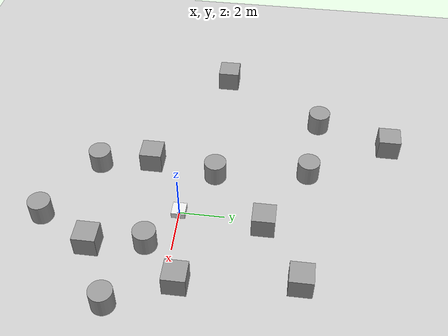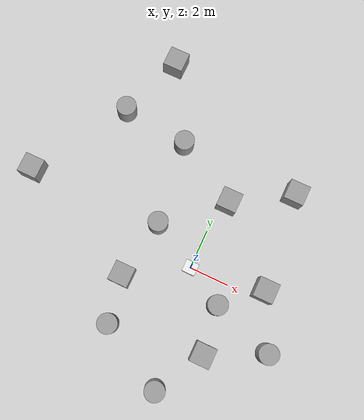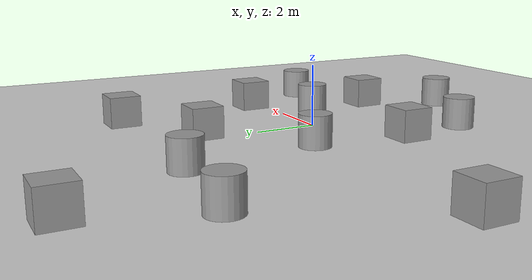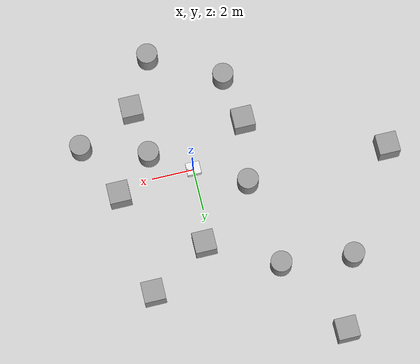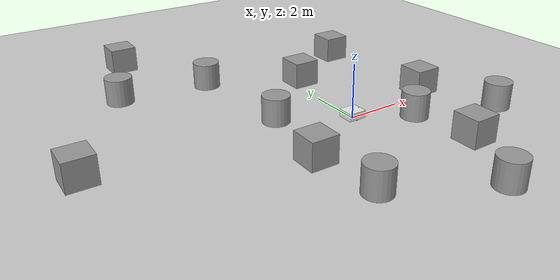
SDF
<sdf version="1.7">
 <world name="default">
  <light name="sun" type="directional">
   <pose>0 0 10 0 -0 0</pose>
   <diffuse>0.8 0.8 0.8 1</diffuse>
   <specular>0.2 0.2 0.2 1</specular>
   <attenuation>
    <range>1000</range>
    <constant>0.9</constant>
    <linear>0.01</linear>
    <quadratic>0.001</quadratic>
   </attenuation>
   <direction>-0.5 0.1 -0.9</direction>
   <spot><inner_angle>0</inner_angle><outer_angle>0</outer_angle><falloff>0</falloff></spot>
  </light>
  <model name="ground_plane">
   <static>1</static>
   <link name="link">
    <collision name="collision">
     <geometry><plane><normal>0 0 1</normal><size>100 100</size></plane></geometry>
     <surface><friction><ode><mu>100</mu><mu2>50</mu2></ode></friction></surface>
    </collision>
    <visual name="visual">
     <cast_shadows>0</cast_shadows>
     <geometry><plane><normal>0 0 1</normal><size>100 100</size></plane></geometry>
     <material>
      <script><uri>file://media/materials/scripts/gazebo.material</uri><name>Gazebo/Grey</name></script>
     </material>
    </visual>
   </link>
  </model>
  <gravity>0 0 -9.8</gravity>
  <magnetic_field>6e-06 2.3e-05 -4.2e-05</magnetic_field>
  <atmosphere type="adiabatic"/>
  <physics type="ode">
   <max_step_size>0.001</max_step_size>
   <real_time_factor>1</real_time_factor>
   <real_time_update_rate>1000</real_time_update_rate>
  </physics>
  <scene><ambient>0.4 0.4 0.4 1</ambient><background>0.7 0.7 0.7 1</background><shadows>1</shadows></scene>
  <audio><device>default</device></audio>
  <spherical_coordinates>
   <surface_model>EARTH_WGS84</surface_model>
   <latitude_deg>0</latitude_deg>
   <longitude_deg>0</longitude_deg>
   <elevation>0</elevation>
   <heading_deg>0</heading_deg>
  </spherical_coordinates>
  <model name="bunker_mini">
   <link name="base_link">
    <inertial>
     <pose>0.007917 0 0.14125 0 -0 0</pose>
     <mass>2.4</mass>
     <inertia>
      <ixx>0.0838745</ixx>
      <ixy>0</ixy>
      <ixz>-0.00263625</ixz>
      <iyy>0.110417</iyy>
      <iyz>0</iyz>
      <izz>0.150863</izz>
     </inertia>
    </inertial>
    <collision name="base_link_fixed_joint_lump__chassis_collision">
     <pose>0 0 0.1405 0 -0 0</pose>
     <geometry><box><size>0.66 0.61 0.281</size></box></geometry>
    </collision>
    <collision name="base_link_fixed_joint_lump__laser_frame_collision_1">
     <pose>0 0 0.3 0 -0 0</pose>
     <geometry><cylinder><length>0.041</length><radius>0.038</radius></cylinder></geometry>
    </collision>
    <collision name="base_link_fixed_joint_lump__front_caster_wheel_collision_2">
     <pose>0.25 0 0 0 -0 0</pose>
     <geometry><sphere><radius>0.05</radius></sphere></geometry>
     <surface><friction><ode><mu>0.001</mu><mu2>0.001</mu2></ode></friction></surface>
    </collision>
    <collision name="base_link_fixed_joint_lump__front_diamond_collision_3">
     <pose>0.27 0 0.28 0 -0 0.785398</pose>
     <geometry><box><size>0.03 0.03 0.02</size></box></geometry>
    </collision>
    <collision name="base_link_fixed_joint_lump__rear_caster_wheel_collision_4">
     <pose>-0.25 0 0 0 -0 0</pose>
     <geometry><sphere><radius>0.05</radius></sphere></geometry>
     <surface><friction><ode><mu>0.001</mu><mu2>0.001</mu2></ode></friction></surface>
    </collision>
    <visual name="base_link_fixed_joint_lump__chassis_visual">
     <pose>0 0 0.1405 0 -0 0</pose>
     <geometry><box><size>0.66 0.61 0.281</size></box></geometry>
     <material>
      <script><name>Gazebo/White</name><uri>file://media/materials/scripts/gazebo.material</uri></script>
     </material>
    </visual>
    <visual name="base_link_fixed_joint_lump__laser_frame_visual_1">
     <pose>0 0 0.3 0 -0 0</pose>
     <geometry><cylinder><length>0.041</length><radius>0.038</radius></cylinder></geometry>
     <material>
      <script><name>Gazebo/Red</name><uri>file://media/materials/scripts/gazebo.material</uri></script>
     </material>
    </visual>
    <visual name="base_link_fixed_joint_lump__front_caster_wheel_visual_2">
     <pose>0.25 0 0 0 -0 0</pose>
     <geometry><sphere><radius>0.05</radius></sphere></geometry>
     <material>
      <script><name>Gazebo/Black</name><uri>file://media/materials/scripts/gazebo.material</uri></script>
     </material>
    </visual>
    <visual name="base_link_fixed_joint_lump__front_diamond_visual_3">
     <pose>0.27 0 0.28 0 -0 0.785398</pose>
     <geometry><box><size>0.03 0.03 0.02</size></box></geometry>
     <material>
      <script><name>Gazebo/Blue</name><uri>file://media/materials/scripts/gazebo.material</uri></script>
     </material>
    </visual>
    <visual name="base_link_fixed_joint_lump__rear_caster_wheel_visual_4">
     <pose>-0.25 0 0 0 -0 0</pose>
     <geometry><sphere><radius>0.05</radius></sphere></geometry>
     <material>
      <script><name>Gazebo/Black</name><uri>file://media/materials/scripts/gazebo.material</uri></script>
     </material>
    </visual>
    <sensor name="rplidar_a2m12" type="ray">
     <visualize>1</visualize>
     <update_rate>10</update_rate>
     <ray>
      <scan>
       <horizontal>
        <samples>360</samples>
        <resolution>1</resolution>
        <min_angle>-3.14</min_angle>
        <max_angle>3.14</max_angle>
       </horizontal>
       <vertical><samples>1</samples><min_angle>0</min_angle><max_angle>0</max_angle></vertical>
      </scan>
      <range><min>0.3</min><max>12</max><resolution>1</resolution></range>
     </ray>
     <plugin name="laser_controller" filename="libgazebo_ros_ray_sensor.so">
      <ros><argument>~/out:=scan</argument></ros>
      <output_type>sensor_msgs/LaserScan</output_type>
      <frame_name>laser_frame</frame_name>
     </plugin>
     <pose>0 0 0.3 0 -0 0</pose>
    </sensor>
   </link>
   <joint name="left_wheel_joint" type="revolute">
    <pose relative_to="base_link">0 0.25 0 -1.5708 0 0</pose>
    <parent>base_link</parent>
    <child>left_wheel</child>
    <axis>
     <xyz>0 0 1</xyz>
     <limit><lower>-1e+16</lower><upper>1e+16</upper></limit>
     <dynamics><spring_reference>0</spring_reference><spring_stiffness>0</spring_stiffness></dynamics>
    </axis>
   </joint>
   <link name="left_wheel">
    <pose relative_to="left_wheel_joint">0 0 0 0 -0 0</pose>
    <inertial>
     <mass>0.1</mass>
     <inertia>
      <ixx>7.58333e-05</ixx>
      <ixy>0</ixy>
      <ixz>0</ixz>
      <iyy>7.58333e-05</iyy>
      <iyz>0</iyz>
      <izz>0.000125</izz>
     </inertia>
    </inertial>
    <collision name="left_wheel_collision">
     <geometry><cylinder><length>0.04</length><radius>0.05</radius></cylinder></geometry>
    </collision>
    <visual name="left_wheel_visual">
     <geometry><cylinder><length>0.04</length><radius>0.05</radius></cylinder></geometry>
     <material>
      <script><name>Gazebo/Blue</name><uri>file://media/materials/scripts/gazebo.material</uri></script>
     </material>
    </visual>
   </link>
   <joint name="right_wheel_joint" type="revolute">
    <pose relative_to="base_link">0 -0.25 0 1.5708 -0 0</pose>
    <parent>base_link</parent>
    <child>right_wheel</child>
    <axis>
     <xyz>0 0 -1</xyz>
     <limit><lower>-1e+16</lower><upper>1e+16</upper></limit>
     <dynamics><spring_reference>0</spring_reference><spring_stiffness>0</spring_stiffness></dynamics>
    </axis>
   </joint>
   <link name="right_wheel">
    <pose relative_to="right_wheel_joint">0 0 0 0 -0 0</pose>
    <inertial>
     <mass>0.1</mass>
     <inertia>
      <ixx>7.58333e-05</ixx>
      <ixy>0</ixy>
      <ixz>0</ixz>
      <iyy>7.58333e-05</iyy>
      <iyz>0</iyz>
      <izz>0.000125</izz>
     </inertia>
    </inertial>
    <collision name="right_wheel_collision">
     <geometry><cylinder><length>0.04</length><radius>0.05</radius></cylinder></geometry>
    </collision>
    <visual name="right_wheel_visual">
     <geometry><cylinder><length>0.04</length><radius>0.05</radius></cylinder></geometry>
     <material>
      <script><name>Gazebo/Blue</name><uri>file://media/materials/scripts/gazebo.material</uri></script>
     </material>
    </visual>
   </link>
   <static>0</static>
   <plugin name="diff_drive" filename="libgazebo_ros_diff_drive.so">
    <left_joint>left_wheel_joint</left_joint>
    <right_joint>right_wheel_joint</right_joint>
    <wheel_separation>0.5</wheel_separation>
    <wheel_diameter>0.1</wheel_diameter>
    <max_wheel_torque>200</max_wheel_torque>
    <max_wheel_acceleration>10</max_wheel_acceleration>
    <odometry_frame>odom</odometry_frame>
    <robot_base_frame>base_link</robot_base_frame>
    <publish_odom>1</publish_odom>
    <publish_odom_tf>1</publish_odom_tf>
    <publish_wheel_tf>1</publish_wheel_tf>
   </plugin>
   <pose>-0.000116 -0.000174 0.05 0 -0 -0.006581</pose>
  </model>
  <model name="unit_cylinder">
   <pose>-2.34098 1.28277 0.499992 -3e-06 3e-06 0</pose>
   <link name="link">
    <inertial>
     <mass>1</mass>
     <inertia><ixx>0.145833</ixx><ixy>0</ixy><ixz>0</ixz><iyy>0.145833</iyy><iyz>0</iyz><izz>0.125</izz></inertia>
    </inertial>
    <collision name="collision">
     <geometry><cylinder><radius>0.5</radius><length>1</length></cylinder></geometry>
    </collision>
    <visual name="visual">
     <geometry><cylinder><radius>0.5</radius><length>1</length></cylinder></geometry>
     <material>
      <script><name>Gazebo/Grey</name><uri>file://media/materials/scripts/gazebo.material</uri></script>
     </material>
    </visual>
   </link>
  </model>
  <model name="unit_box">
   <pose>0.339716 3.72251 0.499995 0 -1e-05 0</pose>
   <link name="link">
    <inertial>
     <mass>1</mass>
     <inertia>
      <ixx>0.166667</ixx>
      <ixy>0</ixy>
      <ixz>0</ixz>
      <iyy>0.166667</iyy>
      <iyz>0</iyz>
      <izz>0.166667</izz>
     </inertia>
    </inertial>
    <collision name="collision"><geometry><box><size>1 1 1</size></box></geometry></collision>
    <visual name="visual">
     <geometry><box><size>1 1 1</size></box></geometry>
     <material>
      <script><name>Gazebo/Grey</name><uri>file://media/materials/scripts/gazebo.material</uri></script>
     </material>
    </visual>
   </link>
  </model>
  <model name="unit_box_clone">
   <pose>3.67285 0.492547 0.499995 1e-05 -0 0</pose>
   <link name="link">
    <inertial>
     <mass>1</mass>
     <inertia>
      <ixx>0.166667</ixx>
      <ixy>0</ixy>
      <ixz>0</ixz>
      <iyy>0.166667</iyy>
      <iyz>0</iyz>
      <izz>0.166667</izz>
     </inertia>
    </inertial>
    <collision name="collision"><geometry><box><size>1 1 1</size></box></geometry></collision>
    <visual name="visual">
     <geometry><box><size>1 1 1</size></box></geometry>
     <material>
      <script><name>Gazebo/Grey</name><uri>file://media/materials/scripts/gazebo.material</uri></script>
     </material>
    </visual>
   </link>
  </model>
  <model name="unit_box_clone_0">
   <pose>2.21564 -3.47825 0.499995 1e-05 -0 0</pose>
   <link name="link">
    <inertial>
     <mass>1</mass>
     <inertia>
      <ixx>0.166667</ixx>
      <ixy>0</ixy>
      <ixz>0</ixz>
      <iyy>0.166667</iyy>
      <iyz>0</iyz>
      <izz>0.166667</izz>
     </inertia>
    </inertial>
    <collision name="collision"><geometry><box><size>1 1 1</size></box></geometry></collision>
    <visual name="visual">
     <geometry><box><size>1 1 1</size></box></geometry>
     <material>
      <script><name>Gazebo/Grey</name><uri>file://media/materials/scripts/gazebo.material</uri></script>
     </material>
    </visual>
   </link>
  </model>
  <model name="unit_box_clone_1">
   <pose>-2.82789 -1.72097 0.499995 0 -1e-05 0</pose>
   <link name="link">
    <inertial>
     <mass>1</mass>
     <inertia>
      <ixx>0.166667</ixx>
      <ixy>0</ixy>
      <ixz>0</ixz>
      <iyy>0.166667</iyy>
      <iyz>0</iyz>
      <izz>0.166667</izz>
     </inertia>
    </inertial>
    <collision name="collision"><geometry><box><size>1 1 1</size></box></geometry></collision>
    <visual name="visual">
     <geometry><box><size>1 1 1</size></box></geometry>
     <material>
      <script><name>Gazebo/Grey</name><uri>file://media/materials/scripts/gazebo.material</uri></script>
     </material>
    </visual>
   </link>
  </model>
  <model name="unit_box_clone_2">
   <pose>-5.04924 9.18567 0.499995 1e-05 -0 0</pose>
   <link name="link">
    <inertial>
     <mass>1</mass>
     <inertia>
      <ixx>0.166667</ixx>
      <ixy>0</ixy>
      <ixz>0</ixz>
      <iyy>0.166667</iyy>
      <iyz>0</iyz>
      <izz>0.166667</izz>
     </inertia>
    </inertial>
    <collision name="collision"><geometry><box><size>1 1 1</size></box></geometry></collision>
    <visual name="visual">
     <geometry><box><size>1 1 1</size></box></geometry>
     <material>
      <script><name>Gazebo/Grey</name><uri>file://media/materials/scripts/gazebo.material</uri></script>
     </material>
    </visual>
   </link>
  </model>
  <model name="unit_box_clone_3">
   <pose>3.1458 5.44065 0.499995 0 -1e-05 0</pose>
   <link name="link">
    <inertial>
     <mass>1</mass>
     <inertia>
      <ixx>0.166667</ixx>
      <ixy>0</ixy>
      <ixz>0</ixz>
      <iyy>0.166667</iyy>
      <iyz>0</iyz>
      <izz>0.166667</izz>
     </inertia>
    </inertial>
    <collision name="collision"><geometry><box><size>1 1 1</size></box></geometry></collision>
    <visual name="visual">
     <geometry><box><size>1 1 1</size></box></geometry>
     <material>
      <script><name>Gazebo/Grey</name><uri>file://media/materials/scripts/gazebo.material</uri></script>
     </material>
    </visual>
   </link>
  </model>
  <model name="unit_box_clone_4">
   <pose>-9.13959 1.13969 0.499995 -1e-05 0 0</pose>
   <link name="link">
    <inertial>
     <mass>1</mass>
     <inertia>
      <ixx>0.166667</ixx>
      <ixy>0</ixy>
      <ixz>0</ixz>
      <iyy>0.166667</iyy>
      <iyz>0</iyz>
      <izz>0.166667</izz>
     </inertia>
    </inertial>
    <collision name="collision"><geometry><box><size>1 1 1</size></box></geometry></collision>
    <visual name="visual">
     <geometry><box><size>1 1 1</size></box></geometry>
     <material>
      <script><name>Gazebo/Grey</name><uri>file://media/materials/scripts/gazebo.material</uri></script>
     </material>
    </visual>
   </link>
  </model>
  <model name="unit_cylinder_0">
   <pose>-6.25154 5.87427 0.499992 -3e-06 -4e-06 -0</pose>
   <link name="link">
    <inertial>
     <mass>1</mass>
     <inertia><ixx>0.145833</ixx><ixy>0</ixy><ixz>0</ixz><iyy>0.145833</iyy><iyz>0</iyz><izz>0.125</izz></inertia>
    </inertial>
    <collision name="collision">
     <geometry><cylinder><radius>0.5</radius><length>1</length></cylinder></geometry>
    </collision>
    <visual name="visual">
     <geometry><cylinder><radius>0.5</radius><length>1</length></cylinder></geometry>
     <material>
      <script><name>Gazebo/Grey</name><uri>file://media/materials/scripts/gazebo.material</uri></script>
     </material>
    </visual>
   </link>
  </model>
  <model name="unit_cylinder_0_clone">
   <pose>4.95025 -2.16239 0.499997 3e-06 4e-06 -0</pose>
   <link name="link">
    <inertial>
     <mass>1</mass>
     <inertia><ixx>0.145833</ixx><ixy>0</ixy><ixz>0</ixz><iyy>0.145833</iyy><iyz>0</iyz><izz>0.125</izz></inertia>
    </inertial>
    <collision name="collision">
     <geometry><cylinder><radius>0.5</radius><length>1</length></cylinder></geometry>
    </collision>
    <visual name="visual">
     <geometry><cylinder><radius>0.5</radius><length>1</length></cylinder></geometry>
     <material>
      <script><name>Gazebo/Grey</name><uri>file://media/materials/scripts/gazebo.material</uri></script>
     </material>
    </visual>
   </link>
  </model>
  <model name="unit_cylinder_0_clone_0">
   <pose>0.883897 -5.90191 0.499992 -3e-06 -4e-06 -0</pose>
   <link name="link">
    <inertial>
     <mass>1</mass>
     <inertia><ixx>0.145833</ixx><ixy>0</ixy><ixz>0</ixz><iyy>0.145833</iyy><iyz>0</iyz><izz>0.125</izz></inertia>
    </inertial>
    <collision name="collision">
     <geometry><cylinder><radius>0.5</radius><length>1</length></cylinder></geometry>
    </collision>
    <visual name="visual">
     <geometry><cylinder><radius>0.5</radius><length>1</length></cylinder></geometry>
     <material>
      <script><name>Gazebo/Grey</name><uri>file://media/materials/scripts/gazebo.material</uri></script>
     </material>
    </visual>
   </link>
  </model>
  <model name="unit_cylinder_0_clone_1">
   <pose>-2.42093 -4.08274 0.499997 3e-06 3e-06 0</pose>
   <link name="link">
    <inertial>
     <mass>1</mass>
     <inertia><ixx>0.145833</ixx><ixy>0</ixy><ixz>0</ixz><iyy>0.145833</iyy><iyz>0</iyz><izz>0.125</izz></inertia>
    </inertial>
    <collision name="collision">
     <geometry><cylinder><radius>0.5</radius><length>1</length></cylinder></geometry>
    </collision>
    <visual name="visual">
     <geometry><cylinder><radius>0.5</radius><length>1</length></cylinder></geometry>
     <material>
      <script><name>Gazebo/Grey</name><uri>file://media/materials/scripts/gazebo.material</uri></script>
     </material>
    </visual>
   </link>
  </model>
  <model name="unit_cylinder_0_clone_2">
   <pose>-2.89253 5.49275 0.499993 -3e-06 -4e-06 -0</pose>
   <link name="link">
    <inertial>
     <mass>1</mass>
     <inertia><ixx>0.145833</ixx><ixy>0</ixy><ixz>0</ixz><iyy>0.145833</iyy><iyz>0</iyz><izz>0.125</izz></inertia>
    </inertial>
    <collision name="collision">
     <geometry><cylinder><radius>0.5</radius><length>1</length></cylinder></geometry>
    </collision>
    <visual name="visual">
     <geometry><cylinder><radius>0.5</radius><length>1</length></cylinder></geometry>
     <material>
      <script><name>Gazebo/Grey</name><uri>file://media/materials/scripts/gazebo.material</uri></script>
     </material>
    </visual>
   </link>
  </model>
  <model name="unit_cylinder_0_clone_3">
   <pose>1.89856 -1.11017 0.499993 -3e-06 -4e-06 -0</pose>
   <link name="link">
    <inertial>
     <mass>1</mass>
     <inertia><ixx>0.145833</ixx><ixy>0</ixy><ixz>0</ixz><iyy>0.145833</iyy><iyz>0</iyz><izz>0.125</izz></inertia>
    </inertial>
    <collision name="collision">
     <geometry><cylinder><radius>0.5</radius><length>1</length></cylinder></geometry>
    </collision>
    <visual name="visual">
     <geometry><cylinder><radius>0.5</radius><length>1</length></cylinder></geometry>
     <material>
      <script><name>Gazebo/Grey</name><uri>file://media/materials/scripts/gazebo.material</uri></script>
     </material>
    </visual>
   </link>
  </model>
 </world>
</sdf>
